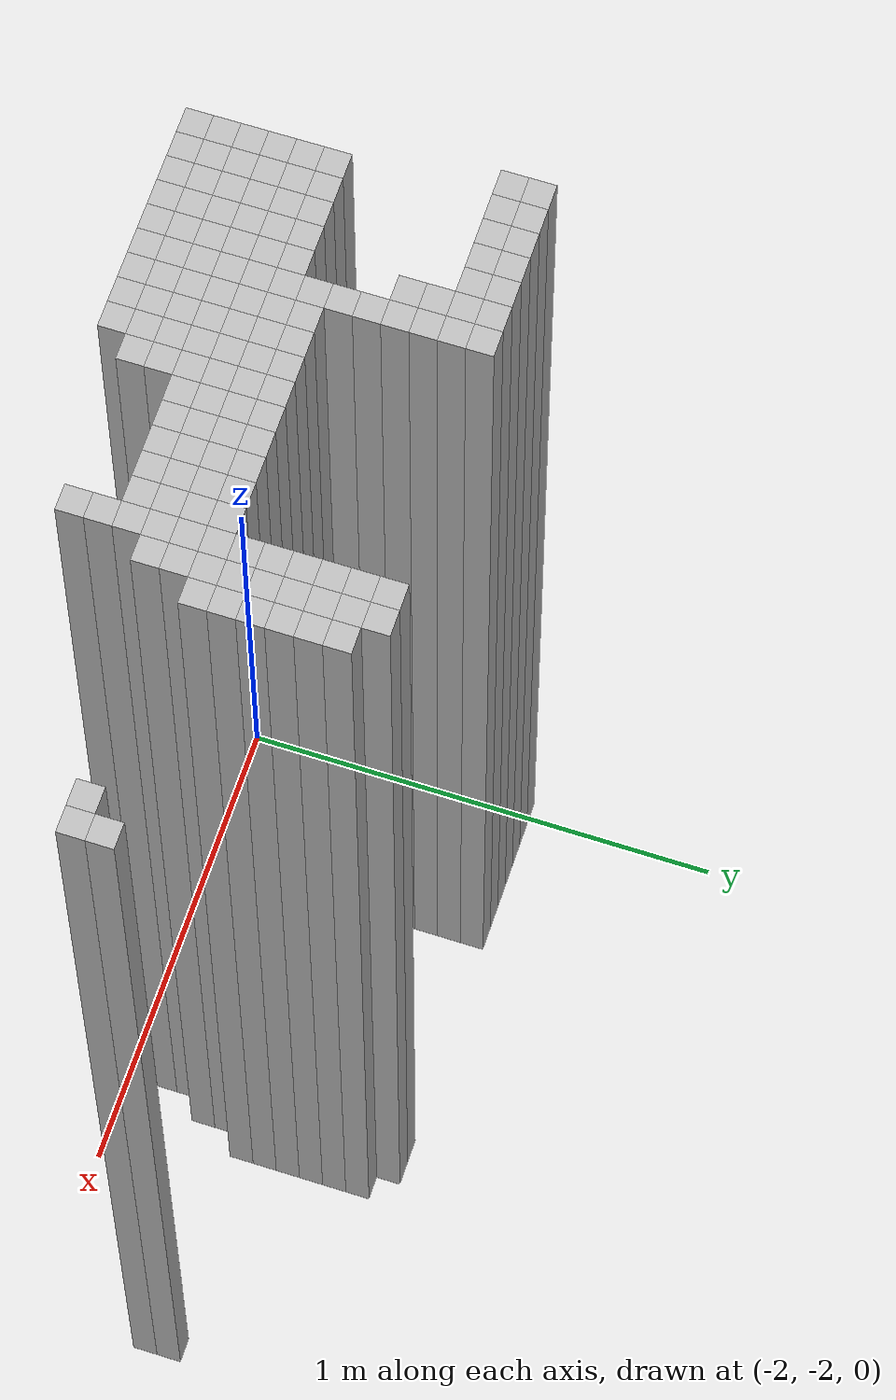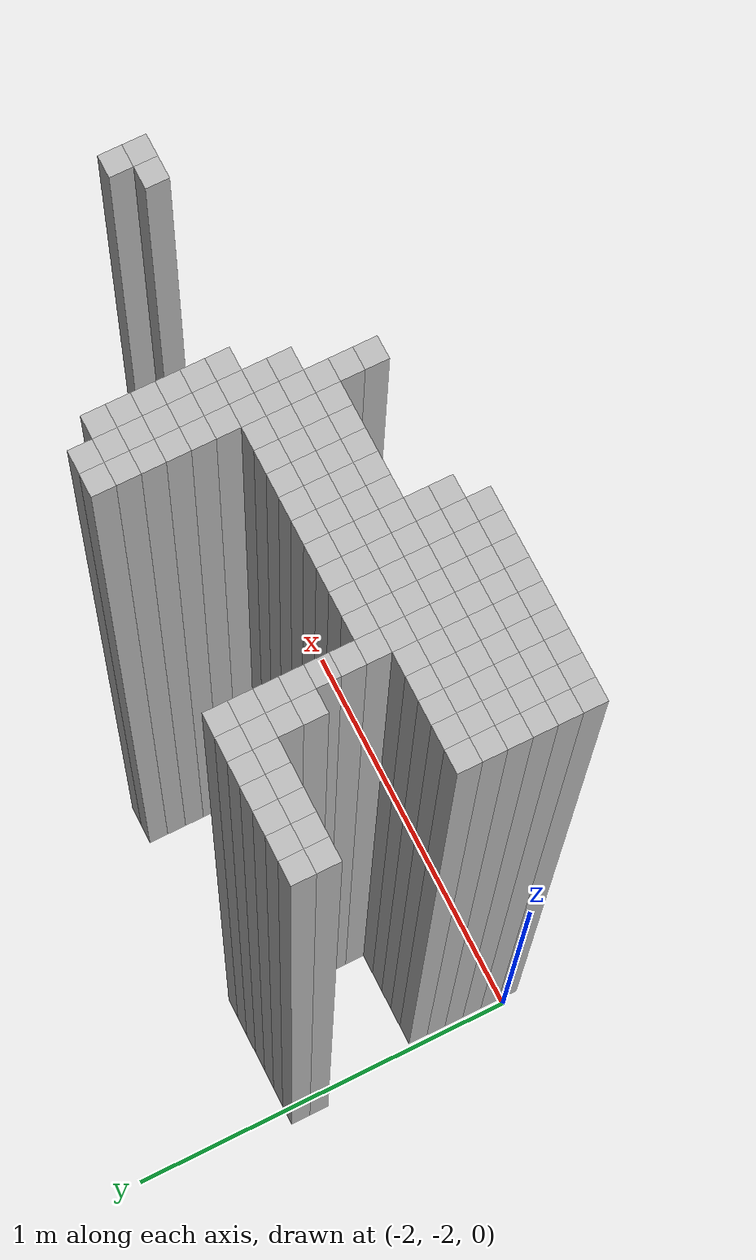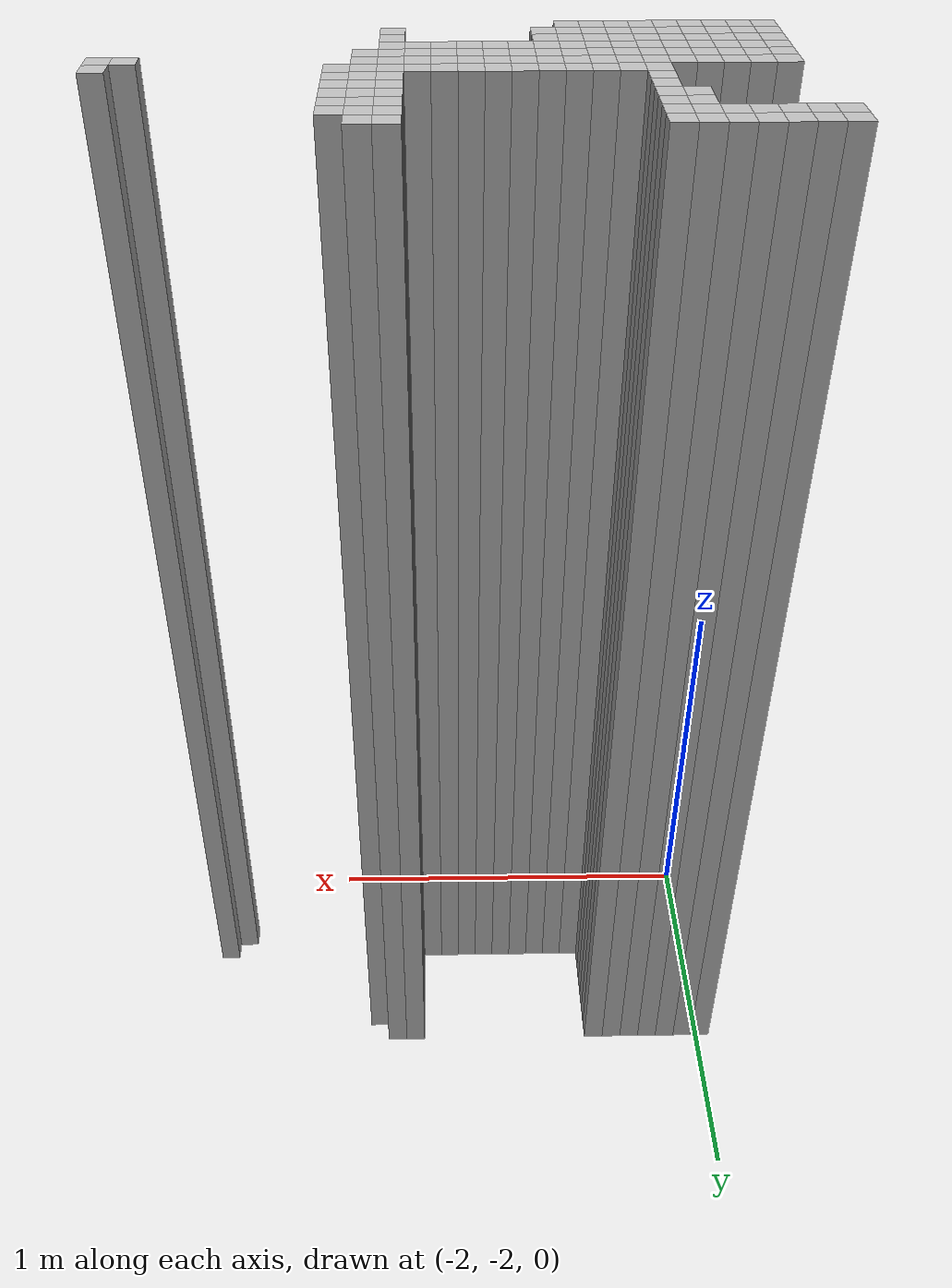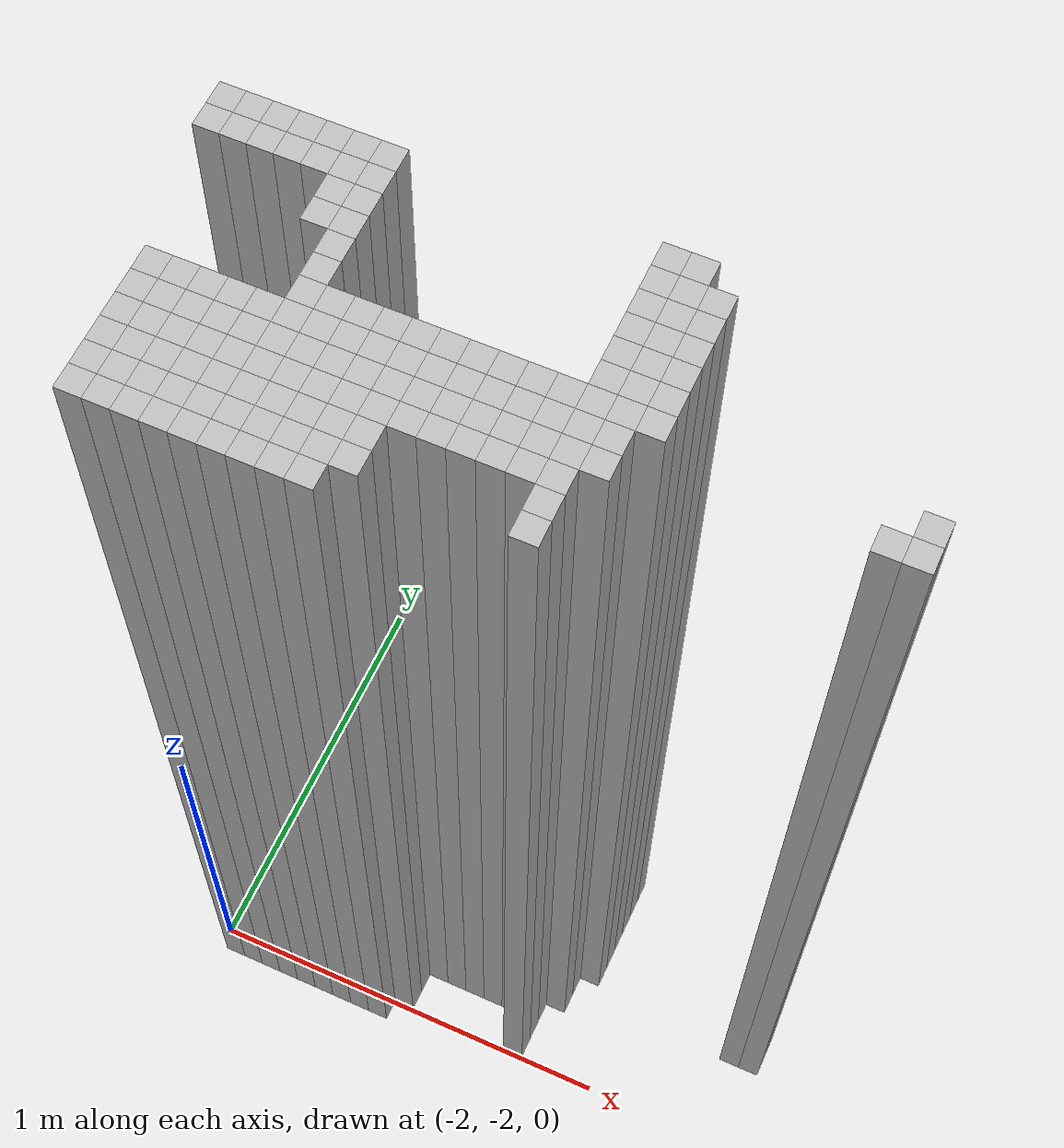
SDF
<sdf version="1.9">
 <world name="map_world">
  <model name="wall_183_182">
   <static>true</static>
   <pose>-2.011 -1.420 1.250 0 0 0</pose>
   <link name="link">
    <collision name="collision"><geometry><box><size>0.050 0.050 2.500</size></box></geometry></collision>
    <visual name="visual"><geometry><box><size>0.050 0.050 2.500</size></box></geometry></visual>
   </link>
  </model>
  <model name="wall_184_182">
   <static>true</static>
   <pose>-1.961 -1.420 1.250 0 0 0</pose>
   <link name="link">
    <collision name="collision"><geometry><box><size>0.050 0.050 2.500</size></box></geometry></collision>
    <visual name="visual"><geometry><box><size>0.050 0.050 2.500</size></box></geometry></visual>
   </link>
  </model>
  <model name="wall_185_182">
   <static>true</static>
   <pose>-1.911 -1.420 1.250 0 0 0</pose>
   <link name="link">
    <collision name="collision"><geometry><box><size>0.050 0.050 2.500</size></box></geometry></collision>
    <visual name="visual"><geometry><box><size>0.050 0.050 2.500</size></box></geometry></visual>
   </link>
  </model>
  <model name="wall_186_182">
   <static>true</static>
   <pose>-1.861 -1.420 1.250 0 0 0</pose>
   <link name="link">
    <collision name="collision"><geometry><box><size>0.050 0.050 2.500</size></box></geometry></collision>
    <visual name="visual"><geometry><box><size>0.050 0.050 2.500</size></box></geometry></visual>
   </link>
  </model>
  <model name="wall_187_182">
   <static>true</static>
   <pose>-1.811 -1.420 1.250 0 0 0</pose>
   <link name="link">
    <collision name="collision"><geometry><box><size>0.050 0.050 2.500</size></box></geometry></collision>
    <visual name="visual"><geometry><box><size>0.050 0.050 2.500</size></box></geometry></visual>
   </link>
  </model>
  <model name="wall_188_182">
   <static>true</static>
   <pose>-1.761 -1.420 1.250 0 0 0</pose>
   <link name="link">
    <collision name="collision"><geometry><box><size>0.050 0.050 2.500</size></box></geometry></collision>
    <visual name="visual"><geometry><box><size>0.050 0.050 2.500</size></box></geometry></visual>
   </link>
  </model>
  <model name="wall_189_182">
   <static>true</static>
   <pose>-1.711 -1.420 1.250 0 0 0</pose>
   <link name="link">
    <collision name="collision"><geometry><box><size>0.050 0.050 2.500</size></box></geometry></collision>
    <visual name="visual"><geometry><box><size>0.050 0.050 2.500</size></box></geometry></visual>
   </link>
  </model>
  <model name="wall_199_182">
   <static>true</static>
   <pose>-1.211 -1.420 1.250 0 0 0</pose>
   <link name="link">
    <collision name="collision"><geometry><box><size>0.050 0.050 2.500</size></box></geometry></collision>
    <visual name="visual"><geometry><box><size>0.050 0.050 2.500</size></box></geometry></visual>
   </link>
  </model>
  <model name="wall_200_182">
   <static>true</static>
   <pose>-1.161 -1.420 1.250 0 0 0</pose>
   <link name="link">
    <collision name="collision"><geometry><box><size>0.050 0.050 2.500</size></box></geometry></collision>
    <visual name="visual"><geometry><box><size>0.050 0.050 2.500</size></box></geometry></visual>
   </link>
  </model>
  <model name="wall_183_183">
   <static>true</static>
   <pose>-2.011 -1.470 1.250 0 0 0</pose>
   <link name="link">
    <collision name="collision"><geometry><box><size>0.050 0.050 2.500</size></box></geometry></collision>
    <visual name="visual"><geometry><box><size>0.050 0.050 2.500</size></box></geometry></visual>
   </link>
  </model>
  <model name="wall_184_183">
   <static>true</static>
   <pose>-1.961 -1.470 1.250 0 0 0</pose>
   <link name="link">
    <collision name="collision"><geometry><box><size>0.050 0.050 2.500</size></box></geometry></collision>
    <visual name="visual"><geometry><box><size>0.050 0.050 2.500</size></box></geometry></visual>
   </link>
  </model>
  <model name="wall_185_183">
   <static>true</static>
   <pose>-1.911 -1.470 1.250 0 0 0</pose>
   <link name="link">
    <collision name="collision"><geometry><box><size>0.050 0.050 2.500</size></box></geometry></collision>
    <visual name="visual"><geometry><box><size>0.050 0.050 2.500</size></box></geometry></visual>
   </link>
  </model>
  <model name="wall_186_183">
   <static>true</static>
   <pose>-1.861 -1.470 1.250 0 0 0</pose>
   <link name="link">
    <collision name="collision"><geometry><box><size>0.050 0.050 2.500</size></box></geometry></collision>
    <visual name="visual"><geometry><box><size>0.050 0.050 2.500</size></box></geometry></visual>
   </link>
  </model>
  <model name="wall_187_183">
   <static>true</static>
   <pose>-1.811 -1.470 1.250 0 0 0</pose>
   <link name="link">
    <collision name="collision"><geometry><box><size>0.050 0.050 2.500</size></box></geometry></collision>
    <visual name="visual"><geometry><box><size>0.050 0.050 2.500</size></box></geometry></visual>
   </link>
  </model>
  <model name="wall_188_183">
   <static>true</static>
   <pose>-1.761 -1.470 1.250 0 0 0</pose>
   <link name="link">
    <collision name="collision"><geometry><box><size>0.050 0.050 2.500</size></box></geometry></collision>
    <visual name="visual"><geometry><box><size>0.050 0.050 2.500</size></box></geometry></visual>
   </link>
  </model>
  <model name="wall_189_183">
   <static>true</static>
   <pose>-1.711 -1.470 1.250 0 0 0</pose>
   <link name="link">
    <collision name="collision"><geometry><box><size>0.050 0.050 2.500</size></box></geometry></collision>
    <visual name="visual"><geometry><box><size>0.050 0.050 2.500</size></box></geometry></visual>
   </link>
  </model>
  <model name="wall_199_183">
   <static>true</static>
   <pose>-1.211 -1.470 1.250 0 0 0</pose>
   <link name="link">
    <collision name="collision"><geometry><box><size>0.050 0.050 2.500</size></box></geometry></collision>
    <visual name="visual"><geometry><box><size>0.050 0.050 2.500</size></box></geometry></visual>
   </link>
  </model>
  <model name="wall_200_183">
   <static>true</static>
   <pose>-1.161 -1.470 1.250 0 0 0</pose>
   <link name="link">
    <collision name="collision"><geometry><box><size>0.050 0.050 2.500</size></box></geometry></collision>
    <visual name="visual"><geometry><box><size>0.050 0.050 2.500</size></box></geometry></visual>
   </link>
  </model>
  <model name="wall_201_183">
   <static>true</static>
   <pose>-1.111 -1.470 1.250 0 0 0</pose>
   <link name="link">
    <collision name="collision"><geometry><box><size>0.050 0.050 2.500</size></box></geometry></collision>
    <visual name="visual"><geometry><box><size>0.050 0.050 2.500</size></box></geometry></visual>
   </link>
  </model>
  <model name="wall_188_184">
   <static>true</static>
   <pose>-1.761 -1.520 1.250 0 0 0</pose>
   <link name="link">
    <collision name="collision"><geometry><box><size>0.050 0.050 2.500</size></box></geometry></collision>
    <visual name="visual"><geometry><box><size>0.050 0.050 2.500</size></box></geometry></visual>
   </link>
  </model>
  <model name="wall_189_184">
   <static>true</static>
   <pose>-1.711 -1.520 1.250 0 0 0</pose>
   <link name="link">
    <collision name="collision"><geometry><box><size>0.050 0.050 2.500</size></box></geometry></collision>
    <visual name="visual"><geometry><box><size>0.050 0.050 2.500</size></box></geometry></visual>
   </link>
  </model>
  <model name="wall_199_184">
   <static>true</static>
   <pose>-1.211 -1.520 1.250 0 0 0</pose>
   <link name="link">
    <collision name="collision"><geometry><box><size>0.050 0.050 2.500</size></box></geometry></collision>
    <visual name="visual"><geometry><box><size>0.050 0.050 2.500</size></box></geometry></visual>
   </link>
  </model>
  <model name="wall_200_184">
   <static>true</static>
   <pose>-1.161 -1.520 1.250 0 0 0</pose>
   <link name="link">
    <collision name="collision"><geometry><box><size>0.050 0.050 2.500</size></box></geometry></collision>
    <visual name="visual"><geometry><box><size>0.050 0.050 2.500</size></box></geometry></visual>
   </link>
  </model>
  <model name="wall_201_184">
   <static>true</static>
   <pose>-1.111 -1.520 1.250 0 0 0</pose>
   <link name="link">
    <collision name="collision"><geometry><box><size>0.050 0.050 2.500</size></box></geometry></collision>
    <visual name="visual"><geometry><box><size>0.050 0.050 2.500</size></box></geometry></visual>
   </link>
  </model>
  <model name="wall_188_185">
   <static>true</static>
   <pose>-1.761 -1.570 1.250 0 0 0</pose>
   <link name="link">
    <collision name="collision"><geometry><box><size>0.050 0.050 2.500</size></box></geometry></collision>
    <visual name="visual"><geometry><box><size>0.050 0.050 2.500</size></box></geometry></visual>
   </link>
  </model>
  <model name="wall_189_185">
   <static>true</static>
   <pose>-1.711 -1.570 1.250 0 0 0</pose>
   <link name="link">
    <collision name="collision"><geometry><box><size>0.050 0.050 2.500</size></box></geometry></collision>
    <visual name="visual"><geometry><box><size>0.050 0.050 2.500</size></box></geometry></visual>
   </link>
  </model>
  <model name="wall_199_185">
   <static>true</static>
   <pose>-1.211 -1.570 1.250 0 0 0</pose>
   <link name="link">
    <collision name="collision"><geometry><box><size>0.050 0.050 2.500</size></box></geometry></collision>
    <visual name="visual"><geometry><box><size>0.050 0.050 2.500</size></box></geometry></visual>
   </link>
  </model>
  <model name="wall_200_185">
   <static>true</static>
   <pose>-1.161 -1.570 1.250 0 0 0</pose>
   <link name="link">
    <collision name="collision"><geometry><box><size>0.050 0.050 2.500</size></box></geometry></collision>
    <visual name="visual"><geometry><box><size>0.050 0.050 2.500</size></box></geometry></visual>
   </link>
  </model>
  <model name="wall_201_185">
   <static>true</static>
   <pose>-1.111 -1.570 1.250 0 0 0</pose>
   <link name="link">
    <collision name="collision"><geometry><box><size>0.050 0.050 2.500</size></box></geometry></collision>
    <visual name="visual"><geometry><box><size>0.050 0.050 2.500</size></box></geometry></visual>
   </link>
  </model>
  <model name="wall_189_186">
   <static>true</static>
   <pose>-1.711 -1.620 1.250 0 0 0</pose>
   <link name="link">
    <collision name="collision"><geometry><box><size>0.050 0.050 2.500</size></box></geometry></collision>
    <visual name="visual"><geometry><box><size>0.050 0.050 2.500</size></box></geometry></visual>
   </link>
  </model>
  <model name="wall_199_186">
   <static>true</static>
   <pose>-1.211 -1.620 1.250 0 0 0</pose>
   <link name="link">
    <collision name="collision"><geometry><box><size>0.050 0.050 2.500</size></box></geometry></collision>
    <visual name="visual"><geometry><box><size>0.050 0.050 2.500</size></box></geometry></visual>
   </link>
  </model>
  <model name="wall_200_186">
   <static>true</static>
   <pose>-1.161 -1.620 1.250 0 0 0</pose>
   <link name="link">
    <collision name="collision"><geometry><box><size>0.050 0.050 2.500</size></box></geometry></collision>
    <visual name="visual"><geometry><box><size>0.050 0.050 2.500</size></box></geometry></visual>
   </link>
  </model>
  <model name="wall_201_186">
   <static>true</static>
   <pose>-1.111 -1.620 1.250 0 0 0</pose>
   <link name="link">
    <collision name="collision"><geometry><box><size>0.050 0.050 2.500</size></box></geometry></collision>
    <visual name="visual"><geometry><box><size>0.050 0.050 2.500</size></box></geometry></visual>
   </link>
  </model>
  <model name="wall_189_187">
   <static>true</static>
   <pose>-1.711 -1.670 1.250 0 0 0</pose>
   <link name="link">
    <collision name="collision"><geometry><box><size>0.050 0.050 2.500</size></box></geometry></collision>
    <visual name="visual"><geometry><box><size>0.050 0.050 2.500</size></box></geometry></visual>
   </link>
  </model>
  <model name="wall_199_187">
   <static>true</static>
   <pose>-1.211 -1.670 1.250 0 0 0</pose>
   <link name="link">
    <collision name="collision"><geometry><box><size>0.050 0.050 2.500</size></box></geometry></collision>
    <visual name="visual"><geometry><box><size>0.050 0.050 2.500</size></box></geometry></visual>
   </link>
  </model>
  <model name="wall_200_187">
   <static>true</static>
   <pose>-1.161 -1.670 1.250 0 0 0</pose>
   <link name="link">
    <collision name="collision"><geometry><box><size>0.050 0.050 2.500</size></box></geometry></collision>
    <visual name="visual"><geometry><box><size>0.050 0.050 2.500</size></box></geometry></visual>
   </link>
  </model>
  <model name="wall_201_187">
   <static>true</static>
   <pose>-1.111 -1.670 1.250 0 0 0</pose>
   <link name="link">
    <collision name="collision"><geometry><box><size>0.050 0.050 2.500</size></box></geometry></collision>
    <visual name="visual"><geometry><box><size>0.050 0.050 2.500</size></box></geometry></visual>
   </link>
  </model>
  <model name="wall_189_188">
   <static>true</static>
   <pose>-1.711 -1.720 1.250 0 0 0</pose>
   <link name="link">
    <collision name="collision"><geometry><box><size>0.050 0.050 2.500</size></box></geometry></collision>
    <visual name="visual"><geometry><box><size>0.050 0.050 2.500</size></box></geometry></visual>
   </link>
  </model>
  <model name="wall_190_188">
   <static>true</static>
   <pose>-1.661 -1.720 1.250 0 0 0</pose>
   <link name="link">
    <collision name="collision"><geometry><box><size>0.050 0.050 2.500</size></box></geometry></collision>
    <visual name="visual"><geometry><box><size>0.050 0.050 2.500</size></box></geometry></visual>
   </link>
  </model>
  <model name="wall_191_188">
   <static>true</static>
   <pose>-1.611 -1.720 1.250 0 0 0</pose>
   <link name="link">
    <collision name="collision"><geometry><box><size>0.050 0.050 2.500</size></box></geometry></collision>
    <visual name="visual"><geometry><box><size>0.050 0.050 2.500</size></box></geometry></visual>
   </link>
  </model>
  <model name="wall_192_188">
   <static>true</static>
   <pose>-1.561 -1.720 1.250 0 0 0</pose>
   <link name="link">
    <collision name="collision"><geometry><box><size>0.050 0.050 2.500</size></box></geometry></collision>
    <visual name="visual"><geometry><box><size>0.050 0.050 2.500</size></box></geometry></visual>
   </link>
  </model>
  <model name="wall_193_188">
   <static>true</static>
   <pose>-1.511 -1.720 1.250 0 0 0</pose>
   <link name="link">
    <collision name="collision"><geometry><box><size>0.050 0.050 2.500</size></box></geometry></collision>
    <visual name="visual"><geometry><box><size>0.050 0.050 2.500</size></box></geometry></visual>
   </link>
  </model>
  <model name="wall_194_188">
   <static>true</static>
   <pose>-1.461 -1.720 1.250 0 0 0</pose>
   <link name="link">
    <collision name="collision"><geometry><box><size>0.050 0.050 2.500</size></box></geometry></collision>
    <visual name="visual"><geometry><box><size>0.050 0.050 2.500</size></box></geometry></visual>
   </link>
  </model>
  <model name="wall_195_188">
   <static>true</static>
   <pose>-1.411 -1.720 1.250 0 0 0</pose>
   <link name="link">
    <collision name="collision"><geometry><box><size>0.050 0.050 2.500</size></box></geometry></collision>
    <visual name="visual"><geometry><box><size>0.050 0.050 2.500</size></box></geometry></visual>
   </link>
  </model>
  <model name="wall_196_188">
   <static>true</static>
   <pose>-1.361 -1.720 1.250 0 0 0</pose>
   <link name="link">
    <collision name="collision"><geometry><box><size>0.050 0.050 2.500</size></box></geometry></collision>
    <visual name="visual"><geometry><box><size>0.050 0.050 2.500</size></box></geometry></visual>
   </link>
  </model>
  <model name="wall_197_188">
   <static>true</static>
   <pose>-1.311 -1.720 1.250 0 0 0</pose>
   <link name="link">
    <collision name="collision"><geometry><box><size>0.050 0.050 2.500</size></box></geometry></collision>
    <visual name="visual"><geometry><box><size>0.050 0.050 2.500</size></box></geometry></visual>
   </link>
  </model>
  <model name="wall_198_188">
   <static>true</static>
   <pose>-1.261 -1.720 1.250 0 0 0</pose>
   <link name="link">
    <collision name="collision"><geometry><box><size>0.050 0.050 2.500</size></box></geometry></collision>
    <visual name="visual"><geometry><box><size>0.050 0.050 2.500</size></box></geometry></visual>
   </link>
  </model>
  <model name="wall_199_188">
   <static>true</static>
   <pose>-1.211 -1.720 1.250 0 0 0</pose>
   <link name="link">
    <collision name="collision"><geometry><box><size>0.050 0.050 2.500</size></box></geometry></collision>
    <visual name="visual"><geometry><box><size>0.050 0.050 2.500</size></box></geometry></visual>
   </link>
  </model>
  <model name="wall_200_188">
   <static>true</static>
   <pose>-1.161 -1.720 1.250 0 0 0</pose>
   <link name="link">
    <collision name="collision"><geometry><box><size>0.050 0.050 2.500</size></box></geometry></collision>
    <visual name="visual"><geometry><box><size>0.050 0.050 2.500</size></box></geometry></visual>
   </link>
  </model>
  <model name="wall_201_188">
   <static>true</static>
   <pose>-1.111 -1.720 1.250 0 0 0</pose>
   <link name="link">
    <collision name="collision"><geometry><box><size>0.050 0.050 2.500</size></box></geometry></collision>
    <visual name="visual"><geometry><box><size>0.050 0.050 2.500</size></box></geometry></visual>
   </link>
  </model>
  <model name="wall_210_188">
   <static>true</static>
   <pose>-0.661 -1.720 1.250 0 0 0</pose>
   <link name="link">
    <collision name="collision"><geometry><box><size>0.050 0.050 2.500</size></box></geometry></collision>
    <visual name="visual"><geometry><box><size>0.050 0.050 2.500</size></box></geometry></visual>
   </link>
  </model>
  <model name="wall_184_189">
   <static>true</static>
   <pose>-1.961 -1.770 1.250 0 0 0</pose>
   <link name="link">
    <collision name="collision"><geometry><box><size>0.050 0.050 2.500</size></box></geometry></collision>
    <visual name="visual"><geometry><box><size>0.050 0.050 2.500</size></box></geometry></visual>
   </link>
  </model>
  <model name="wall_185_189">
   <static>true</static>
   <pose>-1.911 -1.770 1.250 0 0 0</pose>
   <link name="link">
    <collision name="collision"><geometry><box><size>0.050 0.050 2.500</size></box></geometry></collision>
    <visual name="visual"><geometry><box><size>0.050 0.050 2.500</size></box></geometry></visual>
   </link>
  </model>
  <model name="wall_186_189">
   <static>true</static>
   <pose>-1.861 -1.770 1.250 0 0 0</pose>
   <link name="link">
    <collision name="collision"><geometry><box><size>0.050 0.050 2.500</size></box></geometry></collision>
    <visual name="visual"><geometry><box><size>0.050 0.050 2.500</size></box></geometry></visual>
   </link>
  </model>
  <model name="wall_187_189">
   <static>true</static>
   <pose>-1.811 -1.770 1.250 0 0 0</pose>
   <link name="link">
    <collision name="collision"><geometry><box><size>0.050 0.050 2.500</size></box></geometry></collision>
    <visual name="visual"><geometry><box><size>0.050 0.050 2.500</size></box></geometry></visual>
   </link>
  </model>
  <model name="wall_188_189">
   <static>true</static>
   <pose>-1.761 -1.770 1.250 0 0 0</pose>
   <link name="link">
    <collision name="collision"><geometry><box><size>0.050 0.050 2.500</size></box></geometry></collision>
    <visual name="visual"><geometry><box><size>0.050 0.050 2.500</size></box></geometry></visual>
   </link>
  </model>
  <model name="wall_189_189">
   <static>true</static>
   <pose>-1.711 -1.770 1.250 0 0 0</pose>
   <link name="link">
    <collision name="collision"><geometry><box><size>0.050 0.050 2.500</size></box></geometry></collision>
    <visual name="visual"><geometry><box><size>0.050 0.050 2.500</size></box></geometry></visual>
   </link>
  </model>
  <model name="wall_190_189">
   <static>true</static>
   <pose>-1.661 -1.770 1.250 0 0 0</pose>
   <link name="link">
    <collision name="collision"><geometry><box><size>0.050 0.050 2.500</size></box></geometry></collision>
    <visual name="visual"><geometry><box><size>0.050 0.050 2.500</size></box></geometry></visual>
   </link>
  </model>
  <model name="wall_191_189">
   <static>true</static>
   <pose>-1.611 -1.770 1.250 0 0 0</pose>
   <link name="link">
    <collision name="collision"><geometry><box><size>0.050 0.050 2.500</size></box></geometry></collision>
    <visual name="visual"><geometry><box><size>0.050 0.050 2.500</size></box></geometry></visual>
   </link>
  </model>
  <model name="wall_192_189">
   <static>true</static>
   <pose>-1.561 -1.770 1.250 0 0 0</pose>
   <link name="link">
    <collision name="collision"><geometry><box><size>0.050 0.050 2.500</size></box></geometry></collision>
    <visual name="visual"><geometry><box><size>0.050 0.050 2.500</size></box></geometry></visual>
   </link>
  </model>
  <model name="wall_193_189">
   <static>true</static>
   <pose>-1.511 -1.770 1.250 0 0 0</pose>
   <link name="link">
    <collision name="collision"><geometry><box><size>0.050 0.050 2.500</size></box></geometry></collision>
    <visual name="visual"><geometry><box><size>0.050 0.050 2.500</size></box></geometry></visual>
   </link>
  </model>
  <model name="wall_194_189">
   <static>true</static>
   <pose>-1.461 -1.770 1.250 0 0 0</pose>
   <link name="link">
    <collision name="collision"><geometry><box><size>0.050 0.050 2.500</size></box></geometry></collision>
    <visual name="visual"><geometry><box><size>0.050 0.050 2.500</size></box></geometry></visual>
   </link>
  </model>
  <model name="wall_195_189">
   <static>true</static>
   <pose>-1.411 -1.770 1.250 0 0 0</pose>
   <link name="link">
    <collision name="collision"><geometry><box><size>0.050 0.050 2.500</size></box></geometry></collision>
    <visual name="visual"><geometry><box><size>0.050 0.050 2.500</size></box></geometry></visual>
   </link>
  </model>
  <model name="wall_196_189">
   <static>true</static>
   <pose>-1.361 -1.770 1.250 0 0 0</pose>
   <link name="link">
    <collision name="collision"><geometry><box><size>0.050 0.050 2.500</size></box></geometry></collision>
    <visual name="visual"><geometry><box><size>0.050 0.050 2.500</size></box></geometry></visual>
   </link>
  </model>
  <model name="wall_197_189">
   <static>true</static>
   <pose>-1.311 -1.770 1.250 0 0 0</pose>
   <link name="link">
    <collision name="collision"><geometry><box><size>0.050 0.050 2.500</size></box></geometry></collision>
    <visual name="visual"><geometry><box><size>0.050 0.050 2.500</size></box></geometry></visual>
   </link>
  </model>
  <model name="wall_198_189">
   <static>true</static>
   <pose>-1.261 -1.770 1.250 0 0 0</pose>
   <link name="link">
    <collision name="collision"><geometry><box><size>0.050 0.050 2.500</size></box></geometry></collision>
    <visual name="visual"><geometry><box><size>0.050 0.050 2.500</size></box></geometry></visual>
   </link>
  </model>
  <model name="wall_199_189">
   <static>true</static>
   <pose>-1.211 -1.770 1.250 0 0 0</pose>
   <link name="link">
    <collision name="collision"><geometry><box><size>0.050 0.050 2.500</size></box></geometry></collision>
    <visual name="visual"><geometry><box><size>0.050 0.050 2.500</size></box></geometry></visual>
   </link>
  </model>
  <model name="wall_200_189">
   <static>true</static>
   <pose>-1.161 -1.770 1.250 0 0 0</pose>
   <link name="link">
    <collision name="collision"><geometry><box><size>0.050 0.050 2.500</size></box></geometry></collision>
    <visual name="visual"><geometry><box><size>0.050 0.050 2.500</size></box></geometry></visual>
   </link>
  </model>
  <model name="wall_209_189">
   <static>true</static>
   <pose>-0.711 -1.770 1.250 0 0 0</pose>
   <link name="link">
    <collision name="collision"><geometry><box><size>0.050 0.050 2.500</size></box></geometry></collision>
    <visual name="visual"><geometry><box><size>0.050 0.050 2.500</size></box></geometry></visual>
   </link>
  </model>
  <model name="wall_210_189">
   <static>true</static>
   <pose>-0.661 -1.770 1.250 0 0 0</pose>
   <link name="link">
    <collision name="collision"><geometry><box><size>0.050 0.050 2.500</size></box></geometry></collision>
    <visual name="visual"><geometry><box><size>0.050 0.050 2.500</size></box></geometry></visual>
   </link>
  </model>
  <model name="wall_184_190">
   <static>true</static>
   <pose>-1.961 -1.820 1.250 0 0 0</pose>
   <link name="link">
    <collision name="collision"><geometry><box><size>0.050 0.050 2.500</size></box></geometry></collision>
    <visual name="visual"><geometry><box><size>0.050 0.050 2.500</size></box></geometry></visual>
   </link>
  </model>
  <model name="wall_185_190">
   <static>true</static>
   <pose>-1.911 -1.820 1.250 0 0 0</pose>
   <link name="link">
    <collision name="collision"><geometry><box><size>0.050 0.050 2.500</size></box></geometry></collision>
    <visual name="visual"><geometry><box><size>0.050 0.050 2.500</size></box></geometry></visual>
   </link>
  </model>
  <model name="wall_186_190">
   <static>true</static>
   <pose>-1.861 -1.820 1.250 0 0 0</pose>
   <link name="link">
    <collision name="collision"><geometry><box><size>0.050 0.050 2.500</size></box></geometry></collision>
    <visual name="visual"><geometry><box><size>0.050 0.050 2.500</size></box></geometry></visual>
   </link>
  </model>
  <model name="wall_187_190">
   <static>true</static>
   <pose>-1.811 -1.820 1.250 0 0 0</pose>
   <link name="link">
    <collision name="collision"><geometry><box><size>0.050 0.050 2.500</size></box></geometry></collision>
    <visual name="visual"><geometry><box><size>0.050 0.050 2.500</size></box></geometry></visual>
   </link>
  </model>
  <model name="wall_188_190">
   <static>true</static>
   <pose>-1.761 -1.820 1.250 0 0 0</pose>
   <link name="link">
    <collision name="collision"><geometry><box><size>0.050 0.050 2.500</size></box></geometry></collision>
    <visual name="visual"><geometry><box><size>0.050 0.050 2.500</size></box></geometry></visual>
   </link>
  </model>
  <model name="wall_189_190">
   <static>true</static>
   <pose>-1.711 -1.820 1.250 0 0 0</pose>
   <link name="link">
    <collision name="collision"><geometry><box><size>0.050 0.050 2.500</size></box></geometry></collision>
    <visual name="visual"><geometry><box><size>0.050 0.050 2.500</size></box></geometry></visual>
   </link>
  </model>
  <model name="wall_190_190">
   <static>true</static>
   <pose>-1.661 -1.820 1.250 0 0 0</pose>
   <link name="link">
    <collision name="collision"><geometry><box><size>0.050 0.050 2.500</size></box></geometry></collision>
    <visual name="visual"><geometry><box><size>0.050 0.050 2.500</size></box></geometry></visual>
   </link>
  </model>
  <model name="wall_191_190">
   <static>true</static>
   <pose>-1.611 -1.820 1.250 0 0 0</pose>
   <link name="link">
    <collision name="collision"><geometry><box><size>0.050 0.050 2.500</size></box></geometry></collision>
    <visual name="visual"><geometry><box><size>0.050 0.050 2.500</size></box></geometry></visual>
   </link>
  </model>
  <model name="wall_192_190">
   <static>true</static>
   <pose>-1.561 -1.820 1.250 0 0 0</pose>
   <link name="link">
    <collision name="collision"><geometry><box><size>0.050 0.050 2.500</size></box></geometry></collision>
    <visual name="visual"><geometry><box><size>0.050 0.050 2.500</size></box></geometry></visual>
   </link>
  </model>
  <model name="wall_193_190">
   <static>true</static>
   <pose>-1.511 -1.820 1.250 0 0 0</pose>
   <link name="link">
    <collision name="collision"><geometry><box><size>0.050 0.050 2.500</size></box></geometry></collision>
    <visual name="visual"><geometry><box><size>0.050 0.050 2.500</size></box></geometry></visual>
   </link>
  </model>
  <model name="wall_194_190">
   <static>true</static>
   <pose>-1.461 -1.820 1.250 0 0 0</pose>
   <link name="link">
    <collision name="collision"><geometry><box><size>0.050 0.050 2.500</size></box></geometry></collision>
    <visual name="visual"><geometry><box><size>0.050 0.050 2.500</size></box></geometry></visual>
   </link>
  </model>
  <model name="wall_195_190">
   <static>true</static>
   <pose>-1.411 -1.820 1.250 0 0 0</pose>
   <link name="link">
    <collision name="collision"><geometry><box><size>0.050 0.050 2.500</size></box></geometry></collision>
    <visual name="visual"><geometry><box><size>0.050 0.050 2.500</size></box></geometry></visual>
   </link>
  </model>
  <model name="wall_196_190">
   <static>true</static>
   <pose>-1.361 -1.820 1.250 0 0 0</pose>
   <link name="link">
    <collision name="collision"><geometry><box><size>0.050 0.050 2.500</size></box></geometry></collision>
    <visual name="visual"><geometry><box><size>0.050 0.050 2.500</size></box></geometry></visual>
   </link>
  </model>
  <model name="wall_197_190">
   <static>true</static>
   <pose>-1.311 -1.820 1.250 0 0 0</pose>
   <link name="link">
    <collision name="collision"><geometry><box><size>0.050 0.050 2.500</size></box></geometry></collision>
    <visual name="visual"><geometry><box><size>0.050 0.050 2.500</size></box></geometry></visual>
   </link>
  </model>
  <model name="wall_198_190">
   <static>true</static>
   <pose>-1.261 -1.820 1.250 0 0 0</pose>
   <link name="link">
    <collision name="collision"><geometry><box><size>0.050 0.050 2.500</size></box></geometry></collision>
    <visual name="visual"><geometry><box><size>0.050 0.050 2.500</size></box></geometry></visual>
   </link>
  </model>
  <model name="wall_199_190">
   <static>true</static>
   <pose>-1.211 -1.820 1.250 0 0 0</pose>
   <link name="link">
    <collision name="collision"><geometry><box><size>0.050 0.050 2.500</size></box></geometry></collision>
    <visual name="visual"><geometry><box><size>0.050 0.050 2.500</size></box></geometry></visual>
   </link>
  </model>
  <model name="wall_200_190">
   <static>true</static>
   <pose>-1.161 -1.820 1.250 0 0 0</pose>
   <link name="link">
    <collision name="collision"><geometry><box><size>0.050 0.050 2.500</size></box></geometry></collision>
    <visual name="visual"><geometry><box><size>0.050 0.050 2.500</size></box></geometry></visual>
   </link>
  </model>
  <model name="wall_184_191">
   <static>true</static>
   <pose>-1.961 -1.870 1.250 0 0 0</pose>
   <link name="link">
    <collision name="collision"><geometry><box><size>0.050 0.050 2.500</size></box></geometry></collision>
    <visual name="visual"><geometry><box><size>0.050 0.050 2.500</size></box></geometry></visual>
   </link>
  </model>
  <model name="wall_185_191">
   <static>true</static>
   <pose>-1.911 -1.870 1.250 0 0 0</pose>
   <link name="link">
    <collision name="collision"><geometry><box><size>0.050 0.050 2.500</size></box></geometry></collision>
    <visual name="visual"><geometry><box><size>0.050 0.050 2.500</size></box></geometry></visual>
   </link>
  </model>
  <model name="wall_186_191">
   <static>true</static>
   <pose>-1.861 -1.870 1.250 0 0 0</pose>
   <link name="link">
    <collision name="collision"><geometry><box><size>0.050 0.050 2.500</size></box></geometry></collision>
    <visual name="visual"><geometry><box><size>0.050 0.050 2.500</size></box></geometry></visual>
   </link>
  </model>
  <model name="wall_187_191">
   <static>true</static>
   <pose>-1.811 -1.870 1.250 0 0 0</pose>
   <link name="link">
    <collision name="collision"><geometry><box><size>0.050 0.050 2.500</size></box></geometry></collision>
    <visual name="visual"><geometry><box><size>0.050 0.050 2.500</size></box></geometry></visual>
   </link>
  </model>
  <model name="wall_188_191">
   <static>true</static>
   <pose>-1.761 -1.870 1.250 0 0 0</pose>
   <link name="link">
    <collision name="collision"><geometry><box><size>0.050 0.050 2.500</size></box></geometry></collision>
    <visual name="visual"><geometry><box><size>0.050 0.050 2.500</size></box></geometry></visual>
   </link>
  </model>
  <model name="wall_189_191">
   <static>true</static>
   <pose>-1.711 -1.870 1.250 0 0 0</pose>
   <link name="link">
    <collision name="collision"><geometry><box><size>0.050 0.050 2.500</size></box></geometry></collision>
    <visual name="visual"><geometry><box><size>0.050 0.050 2.500</size></box></geometry></visual>
   </link>
  </model>
  <model name="wall_190_191">
   <static>true</static>
   <pose>-1.661 -1.870 1.250 0 0 0</pose>
   <link name="link">
    <collision name="collision"><geometry><box><size>0.050 0.050 2.500</size></box></geometry></collision>
    <visual name="visual"><geometry><box><size>0.050 0.050 2.500</size></box></geometry></visual>
   </link>
  </model>
  <model name="wall_191_191">
   <static>true</static>
   <pose>-1.611 -1.870 1.250 0 0 0</pose>
   <link name="link">
    <collision name="collision"><geometry><box><size>0.050 0.050 2.500</size></box></geometry></collision>
    <visual name="visual"><geometry><box><size>0.050 0.050 2.500</size></box></geometry></visual>
   </link>
  </model>
  <model name="wall_192_191">
   <static>true</static>
   <pose>-1.561 -1.870 1.250 0 0 0</pose>
   <link name="link">
    <collision name="collision"><geometry><box><size>0.050 0.050 2.500</size></box></geometry></collision>
    <visual name="visual"><geometry><box><size>0.050 0.050 2.500</size></box></geometry></visual>
   </link>
  </model>
  <model name="wall_193_191">
   <static>true</static>
   <pose>-1.511 -1.870 1.250 0 0 0</pose>
   <link name="link">
    <collision name="collision"><geometry><box><size>0.050 0.050 2.500</size></box></geometry></collision>
    <visual name="visual"><geometry><box><size>0.050 0.050 2.500</size></box></geometry></visual>
   </link>
  </model>
  <model name="wall_194_191">
   <static>true</static>
   <pose>-1.461 -1.870 1.250 0 0 0</pose>
   <link name="link">
    <collision name="collision"><geometry><box><size>0.050 0.050 2.500</size></box></geometry></collision>
    <visual name="visual"><geometry><box><size>0.050 0.050 2.500</size></box></geometry></visual>
   </link>
  </model>
  <model name="wall_195_191">
   <static>true</static>
   <pose>-1.411 -1.870 1.250 0 0 0</pose>
   <link name="link">
    <collision name="collision"><geometry><box><size>0.050 0.050 2.500</size></box></geometry></collision>
    <visual name="visual"><geometry><box><size>0.050 0.050 2.500</size></box></geometry></visual>
   </link>
  </model>
  <model name="wall_196_191">
   <static>true</static>
   <pose>-1.361 -1.870 1.250 0 0 0</pose>
   <link name="link">
    <collision name="collision"><geometry><box><size>0.050 0.050 2.500</size></box></geometry></collision>
    <visual name="visual"><geometry><box><size>0.050 0.050 2.500</size></box></geometry></visual>
   </link>
  </model>
  <model name="wall_197_191">
   <static>true</static>
   <pose>-1.311 -1.870 1.250 0 0 0</pose>
   <link name="link">
    <collision name="collision"><geometry><box><size>0.050 0.050 2.500</size></box></geometry></collision>
    <visual name="visual"><geometry><box><size>0.050 0.050 2.500</size></box></geometry></visual>
   </link>
  </model>
  <model name="wall_198_191">
   <static>true</static>
   <pose>-1.261 -1.870 1.250 0 0 0</pose>
   <link name="link">
    <collision name="collision"><geometry><box><size>0.050 0.050 2.500</size></box></geometry></collision>
    <visual name="visual"><geometry><box><size>0.050 0.050 2.500</size></box></geometry></visual>
   </link>
  </model>
  <model name="wall_199_191">
   <static>true</static>
   <pose>-1.211 -1.870 1.250 0 0 0</pose>
   <link name="link">
    <collision name="collision"><geometry><box><size>0.050 0.050 2.500</size></box></geometry></collision>
    <visual name="visual"><geometry><box><size>0.050 0.050 2.500</size></box></geometry></visual>
   </link>
  </model>
  <model name="wall_184_192">
   <static>true</static>
   <pose>-1.961 -1.920 1.250 0 0 0</pose>
   <link name="link">
    <collision name="collision"><geometry><box><size>0.050 0.050 2.500</size></box></geometry></collision>
    <visual name="visual"><geometry><box><size>0.050 0.050 2.500</size></box></geometry></visual>
   </link>
  </model>
  <model name="wall_185_192">
   <static>true</static>
   <pose>-1.911 -1.920 1.250 0 0 0</pose>
   <link name="link">
    <collision name="collision"><geometry><box><size>0.050 0.050 2.500</size></box></geometry></collision>
    <visual name="visual"><geometry><box><size>0.050 0.050 2.500</size></box></geometry></visual>
   </link>
  </model>
  <model name="wall_186_192">
   <static>true</static>
   <pose>-1.861 -1.920 1.250 0 0 0</pose>
   <link name="link">
    <collision name="collision"><geometry><box><size>0.050 0.050 2.500</size></box></geometry></collision>
    <visual name="visual"><geometry><box><size>0.050 0.050 2.500</size></box></geometry></visual>
   </link>
  </model>
  <model name="wall_187_192">
   <static>true</static>
   <pose>-1.811 -1.920 1.250 0 0 0</pose>
   <link name="link">
    <collision name="collision"><geometry><box><size>0.050 0.050 2.500</size></box></geometry></collision>
    <visual name="visual"><geometry><box><size>0.050 0.050 2.500</size></box></geometry></visual>
   </link>
  </model>
  <model name="wall_188_192">
   <static>true</static>
   <pose>-1.761 -1.920 1.250 0 0 0</pose>
   <link name="link">
    <collision name="collision"><geometry><box><size>0.050 0.050 2.500</size></box></geometry></collision>
    <visual name="visual"><geometry><box><size>0.050 0.050 2.500</size></box></geometry></visual>
   </link>
  </model>
  <model name="wall_189_192">
   <static>true</static>
   <pose>-1.711 -1.920 1.250 0 0 0</pose>
   <link name="link">
    <collision name="collision"><geometry><box><size>0.050 0.050 2.500</size></box></geometry></collision>
    <visual name="visual"><geometry><box><size>0.050 0.050 2.500</size></box></geometry></visual>
   </link>
  </model>
  <model name="wall_190_192">
   <static>true</static>
   <pose>-1.661 -1.920 1.250 0 0 0</pose>
   <link name="link">
    <collision name="collision"><geometry><box><size>0.050 0.050 2.500</size></box></geometry></collision>
    <visual name="visual"><geometry><box><size>0.050 0.050 2.500</size></box></geometry></visual>
   </link>
  </model>
  <model name="wall_191_192">
   <static>true</static>
   <pose>-1.611 -1.920 1.250 0 0 0</pose>
   <link name="link">
    <collision name="collision"><geometry><box><size>0.050 0.050 2.500</size></box></geometry></collision>
    <visual name="visual"><geometry><box><size>0.050 0.050 2.500</size></box></geometry></visual>
   </link>
  </model>
  <model name="wall_192_192">
   <static>true</static>
   <pose>-1.561 -1.920 1.250 0 0 0</pose>
   <link name="link">
    <collision name="collision"><geometry><box><size>0.050 0.050 2.500</size></box></geometry></collision>
    <visual name="visual"><geometry><box><size>0.050 0.050 2.500</size></box></geometry></visual>
   </link>
  </model>
  <model name="wall_193_192">
   <static>true</static>
   <pose>-1.511 -1.920 1.250 0 0 0</pose>
   <link name="link">
    <collision name="collision"><geometry><box><size>0.050 0.050 2.500</size></box></geometry></collision>
    <visual name="visual"><geometry><box><size>0.050 0.050 2.500</size></box></geometry></visual>
   </link>
  </model>
  <model name="wall_199_192">
   <static>true</static>
   <pose>-1.211 -1.920 1.250 0 0 0</pose>
   <link name="link">
    <collision name="collision"><geometry><box><size>0.050 0.050 2.500</size></box></geometry></collision>
    <visual name="visual"><geometry><box><size>0.050 0.050 2.500</size></box></geometry></visual>
   </link>
  </model>
  <model name="wall_184_193">
   <static>true</static>
   <pose>-1.961 -1.970 1.250 0 0 0</pose>
   <link name="link">
    <collision name="collision"><geometry><box><size>0.050 0.050 2.500</size></box></geometry></collision>
    <visual name="visual"><geometry><box><size>0.050 0.050 2.500</size></box></geometry></visual>
   </link>
  </model>
  <model name="wall_185_193">
   <static>true</static>
   <pose>-1.911 -1.970 1.250 0 0 0</pose>
   <link name="link">
    <collision name="collision"><geometry><box><size>0.050 0.050 2.500</size></box></geometry></collision>
    <visual name="visual"><geometry><box><size>0.050 0.050 2.500</size></box></geometry></visual>
   </link>
  </model>
  <model name="wall_186_193">
   <static>true</static>
   <pose>-1.861 -1.970 1.250 0 0 0</pose>
   <link name="link">
    <collision name="collision"><geometry><box><size>0.050 0.050 2.500</size></box></geometry></collision>
    <visual name="visual"><geometry><box><size>0.050 0.050 2.500</size></box></geometry></visual>
   </link>
  </model>
  <model name="wall_187_193">
   <static>true</static>
   <pose>-1.811 -1.970 1.250 0 0 0</pose>
   <link name="link">
    <collision name="collision"><geometry><box><size>0.050 0.050 2.500</size></box></geometry></collision>
    <visual name="visual"><geometry><box><size>0.050 0.050 2.500</size></box></geometry></visual>
   </link>
  </model>
  <model name="wall_188_193">
   <static>true</static>
   <pose>-1.761 -1.970 1.250 0 0 0</pose>
   <link name="link">
    <collision name="collision"><geometry><box><size>0.050 0.050 2.500</size></box></geometry></collision>
    <visual name="visual"><geometry><box><size>0.050 0.050 2.500</size></box></geometry></visual>
   </link>
  </model>
  <model name="wall_189_193">
   <static>true</static>
   <pose>-1.711 -1.970 1.250 0 0 0</pose>
   <link name="link">
    <collision name="collision"><geometry><box><size>0.050 0.050 2.500</size></box></geometry></collision>
    <visual name="visual"><geometry><box><size>0.050 0.050 2.500</size></box></geometry></visual>
   </link>
  </model>
  <model name="wall_190_193">
   <static>true</static>
   <pose>-1.661 -1.970 1.250 0 0 0</pose>
   <link name="link">
    <collision name="collision"><geometry><box><size>0.050 0.050 2.500</size></box></geometry></collision>
    <visual name="visual"><geometry><box><size>0.050 0.050 2.500</size></box></geometry></visual>
   </link>
  </model>
  <model name="wall_191_193">
   <static>true</static>
   <pose>-1.611 -1.970 1.250 0 0 0</pose>
   <link name="link">
    <collision name="collision"><geometry><box><size>0.050 0.050 2.500</size></box></geometry></collision>
    <visual name="visual"><geometry><box><size>0.050 0.050 2.500</size></box></geometry></visual>
   </link>
  </model>
  <model name="wall_192_193">
   <static>true</static>
   <pose>-1.561 -1.970 1.250 0 0 0</pose>
   <link name="link">
    <collision name="collision"><geometry><box><size>0.050 0.050 2.500</size></box></geometry></collision>
    <visual name="visual"><geometry><box><size>0.050 0.050 2.500</size></box></geometry></visual>
   </link>
  </model>
  <model name="wall_193_193">
   <static>true</static>
   <pose>-1.511 -1.970 1.250 0 0 0</pose>
   <link name="link">
    <collision name="collision"><geometry><box><size>0.050 0.050 2.500</size></box></geometry></collision>
    <visual name="visual"><geometry><box><size>0.050 0.050 2.500</size></box></geometry></visual>
   </link>
  </model>
  <model name="wall_199_193">
   <static>true</static>
   <pose>-1.211 -1.970 1.250 0 0 0</pose>
   <link name="link">
    <collision name="collision"><geometry><box><size>0.050 0.050 2.500</size></box></geometry></collision>
    <visual name="visual"><geometry><box><size>0.050 0.050 2.500</size></box></geometry></visual>
   </link>
  </model>
  <model name="wall_184_194">
   <static>true</static>
   <pose>-1.961 -2.020 1.250 0 0 0</pose>
   <link name="link">
    <collision name="collision"><geometry><box><size>0.050 0.050 2.500</size></box></geometry></collision>
    <visual name="visual"><geometry><box><size>0.050 0.050 2.500</size></box></geometry></visual>
   </link>
  </model>
  <model name="wall_185_194">
   <static>true</static>
   <pose>-1.911 -2.020 1.250 0 0 0</pose>
   <link name="link">
    <collision name="collision"><geometry><box><size>0.050 0.050 2.500</size></box></geometry></collision>
    <visual name="visual"><geometry><box><size>0.050 0.050 2.500</size></box></geometry></visual>
   </link>
  </model>
  <model name="wall_186_194">
   <static>true</static>
   <pose>-1.861 -2.020 1.250 0 0 0</pose>
   <link name="link">
    <collision name="collision"><geometry><box><size>0.050 0.050 2.500</size></box></geometry></collision>
    <visual name="visual"><geometry><box><size>0.050 0.050 2.500</size></box></geometry></visual>
   </link>
  </model>
  <model name="wall_187_194">
   <static>true</static>
   <pose>-1.811 -2.020 1.250 0 0 0</pose>
   <link name="link">
    <collision name="collision"><geometry><box><size>0.050 0.050 2.500</size></box></geometry></collision>
    <visual name="visual"><geometry><box><size>0.050 0.050 2.500</size></box></geometry></visual>
   </link>
  </model>
  <model name="wall_188_194">
   <static>true</static>
   <pose>-1.761 -2.020 1.250 0 0 0</pose>
   <link name="link">
    <collision name="collision"><geometry><box><size>0.050 0.050 2.500</size></box></geometry></collision>
    <visual name="visual"><geometry><box><size>0.050 0.050 2.500</size></box></geometry></visual>
   </link>
  </model>
  <model name="wall_189_194">
   <static>true</static>
   <pose>-1.711 -2.020 1.250 0 0 0</pose>
   <link name="link">
    <collision name="collision"><geometry><box><size>0.050 0.050 2.500</size></box></geometry></collision>
    <visual name="visual"><geometry><box><size>0.050 0.050 2.500</size></box></geometry></visual>
   </link>
  </model>
  <model name="wall_190_194">
   <static>true</static>
   <pose>-1.661 -2.020 1.250 0 0 0</pose>
   <link name="link">
    <collision name="collision"><geometry><box><size>0.050 0.050 2.500</size></box></geometry></collision>
    <visual name="visual"><geometry><box><size>0.050 0.050 2.500</size></box></geometry></visual>
   </link>
  </model>
  <model name="wall_191_194">
   <static>true</static>
   <pose>-1.611 -2.020 1.250 0 0 0</pose>
   <link name="link">
    <collision name="collision"><geometry><box><size>0.050 0.050 2.500</size></box></geometry></collision>
    <visual name="visual"><geometry><box><size>0.050 0.050 2.500</size></box></geometry></visual>
   </link>
  </model>
  <model name="wall_192_194">
   <static>true</static>
   <pose>-1.561 -2.020 1.250 0 0 0</pose>
   <link name="link">
    <collision name="collision"><geometry><box><size>0.050 0.050 2.500</size></box></geometry></collision>
    <visual name="visual"><geometry><box><size>0.050 0.050 2.500</size></box></geometry></visual>
   </link>
  </model>
 </world>
</sdf>
